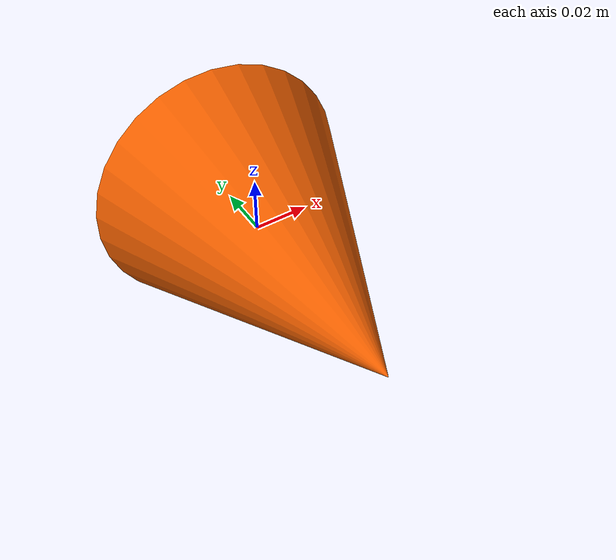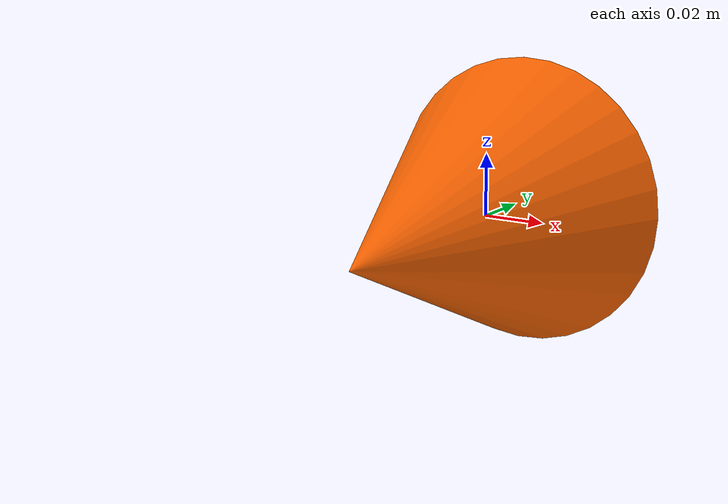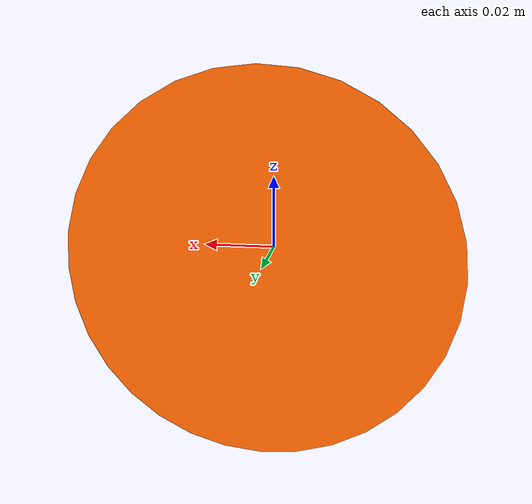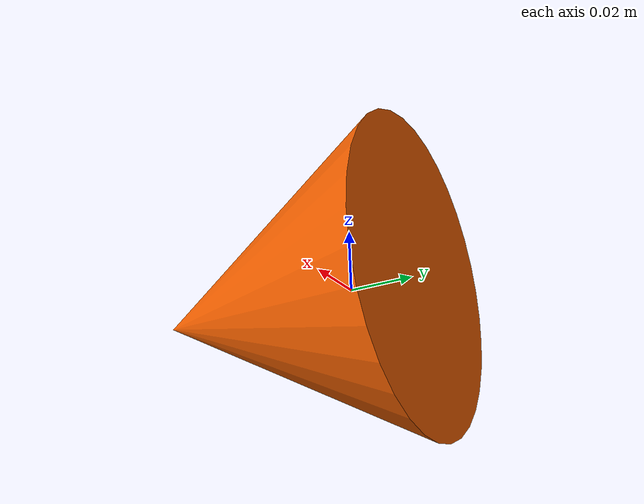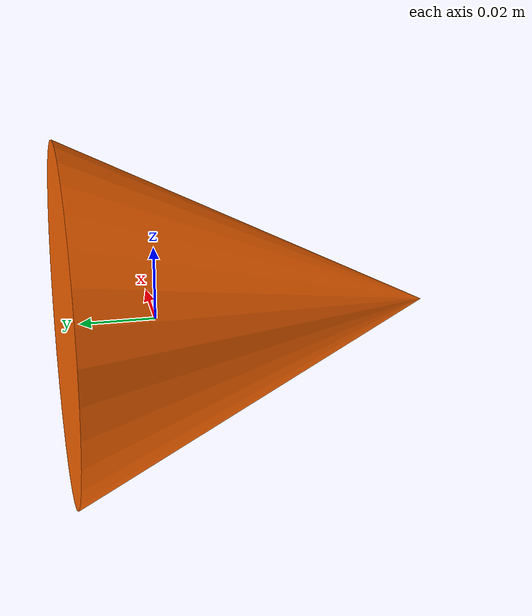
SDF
<?xml version="1.0" ?>
<sdf version="1.5">
  <model name="Orange cone">
    <pose>0 0 0 1.5708 0 0</pose>
    <static>true</static>
    <link name="link">
      <gravity>0</gravity>
      <collision name="collision">
        <geometry>
          <mesh>
            <uri>model://cone/meshes/cone.obj</uri>
            <scale>1 1 1</scale>
          </mesh>
        </geometry>
      </collision>
      <visual name="visual">
        <geometry>
          <mesh>
            <uri>model://cone/meshes/cone.obj</uri>
            <scale>1 1 1</scale>
          </mesh>
        </geometry>
  	    <material>
          <ambient>1 0.396 0 1</ambient>
          <diffuse>1 0.396 0 1</diffuse>
  	    </material>
      </visual>
    </link>
  </model>
</sdf>
